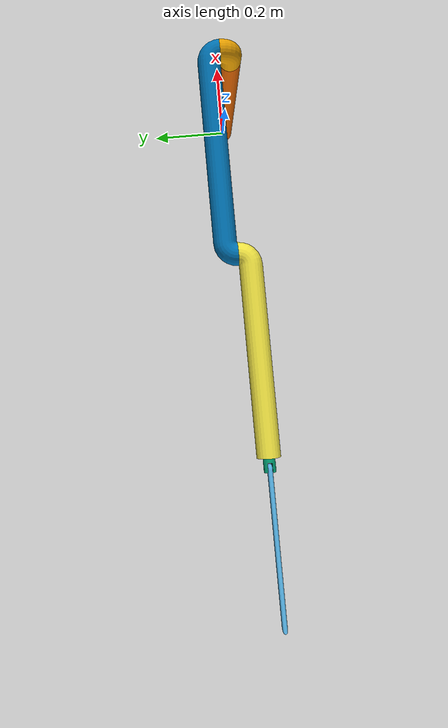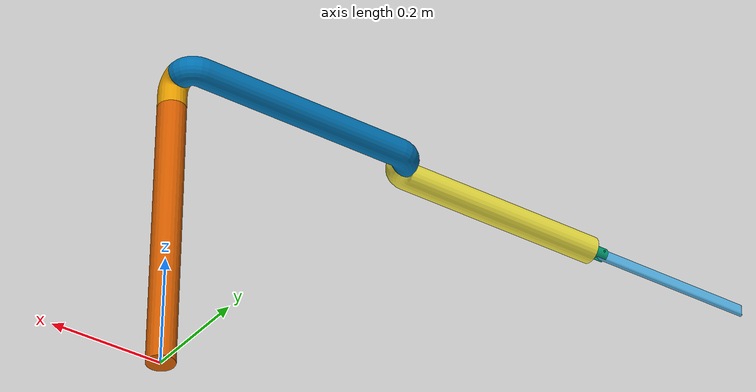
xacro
<?xml version="1.0"?>
<robot xmlns:xacro="http://www.ros.org/wiki/xacro" name="WalliArm_V2_Block_base">
    <xacro:arg name="initial_positions_file" default="initial_positions.yaml" />

    <!-- Import WalliArm_V2_Block_base urdf file -->
    <xacro:include filename="$(find urc_arm_models)/urdf/WalliArm_V2_Block_base.urdf" />

    <!-- Import control_xacro -->
    <xacro:include filename="WalliArm_V2_Block_base.ros2_control.xacro" />

    <xacro:WalliArm_V2_Block_base_ros2_control name="FakeSystem"
        initial_positions_file="$(arg initial_positions_file)" />

</robot>

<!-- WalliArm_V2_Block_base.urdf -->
<robot name="WalliArm_V2_Block_base">
  <joint name="base_yaw_joint" type="revolute">
    <origin xyz="0. 0. 0.5" rpy="0. 0. 0." />
    <parent link="World" />
    <child link="WalliArm_V2_Block_base_rotator" />
    <axis xyz="0. 0. 1." />
    <limit lower="-3.1415927" upper="3.1415927" effort="200." velocity="10." />
  </joint>
  <joint name="ee_pitch_joint" type="revolute">
    <origin xyz="0.005 0. 0.0225" rpy="-3.1415927 1.5707963 0. " />
    <parent link="WalliArm_V2_Block_ee_rotary" />
    <child link="WalliArm_V2_Block_ee_rod" />
    <axis xyz="0. 0. 1." />
    <limit lower="-1.5707963" upper="1.5707963" effort="200." velocity="30." />
  </joint>
  <joint name="ee_roll_jont" type="continuous">
    <origin xyz="-0.425 0. 0.025" rpy="-3.1415927 1.5707963 0. " />
    <parent link="WalliArm_V2_Block_fore_arm" />
    <child link="WalliArm_V2_Block_ee_rotary" />
    <axis xyz="0. 0. 1." />
    <limit effort="200." velocity="50." />
  </joint>
  <joint name="fore_arm_joint" type="revolute">
    <origin xyz="-0.45 0. 0. " rpy="3.1415927 0. 0. " />
    <parent link="WalliArm_V2_Block_upper_arm" />
    <child link="WalliArm_V2_Block_fore_arm" />
    <axis xyz="0. 0. 1." />
    <limit lower="-3.1415927" upper="3.1415927" effort="200." velocity="20." />
  </joint>
  <joint name="upper_arm_joint" type="revolute">
    <origin xyz="0. 0.025 0.055" rpy="-1.5707964 0. 0. " />
    <parent link="WalliArm_V2_Block_base_rotator" />
    <child link="WalliArm_V2_Block_upper_arm" />
    <axis xyz="0. 0. 1." />
    <limit lower="-1.225" upper="3.830" effort="200." velocity="20." />
  </joint>
  <link name="WalliArm_V2_Block_base_rotator">
    <visual>
      <origin xyz="0. 0. -0.5" rpy="0. 0. 0." />
      <geometry>
        <mesh
          filename="package://urc_arm_models/urdf/meshes/WalliArm_V2_Block_base_rotator_base_rotator.obj"
          scale="1. 1. 1." />
      </geometry>
    </visual>
    <collision>
      <geometry>
        <mesh
          filename="package://urc_arm_models/urdf/meshes/WalliArm_V2_Block_base_rotator_base_rotator.obj"
          scale="1. 1. 1." />
      </geometry>
    </collision>
  </link>
  <link name="WalliArm_V2_Block_ee_rod">
    <visual>
      <origin xyz="0.8975 -0.555 0.005 " rpy="-1.5707964 0. 0. " />
      <geometry>
        <mesh filename="package://urc_arm_models/urdf/meshes/WalliArm_V2_Block_ee_rod_ee_rod.obj"
          scale="1. 1. 1." />
      </geometry>
    </visual>
    <collision>
      <geometry>
        <mesh filename="package://urc_arm_models/urdf/meshes/WalliArm_V2_Block_ee_rod_ee_rod.obj"
          scale="1. 1. 1." />
      </geometry>
    </collision>
  </link>
  <link name="WalliArm_V2_Block_ee_rotary">
    <visual>
      <origin xyz="0. 0.555 -0.875" rpy="1.5707964 1.5707964 0. " />
      <geometry>
        <mesh
          filename="package://urc_arm_models/urdf/meshes/WalliArm_V2_Block_ee_rotary_ee_rotary.obj"
          scale="1. 1. 1." />
      </geometry>
    </visual>
    <collision>
      <geometry>
        <mesh
          filename="package://urc_arm_models/urdf/meshes/WalliArm_V2_Block_ee_rotary_ee_rotary.obj"
          scale="1. 1. 1." />
      </geometry>
    </collision>
  </link>
  <link name="WalliArm_V2_Block_fore_arm">
    <visual>
      <origin xyz="0.45 -0.555 0.025" rpy="-1.5707964 0. 0. " />
      <geometry>
        <mesh
          filename="package://urc_arm_models/urdf/meshes/WalliArm_V2_Block_fore_arm_fore_arm.obj"
          scale="1. 1. 1." />
      </geometry>
    </visual>
    <collision>
      <geometry>
        <mesh
          filename="package://urc_arm_models/urdf/meshes/WalliArm_V2_Block_fore_arm_fore_arm.obj"
          scale="1. 1. 1." />
      </geometry>
    </collision>
  </link>
  <link name="WalliArm_V2_Block_upper_arm">
    <visual>
      <origin xyz="0. 0.555 -0.025" rpy="1.5707964 0. 0. " />
      <geometry>
        <mesh
          filename="package://urc_arm_models/urdf/meshes/WalliArm_V2_Block_upper_arm_upper_arm.obj"
          scale="1. 1. 1." />
      </geometry>
    </visual>
    <collision>
      <geometry>
        <mesh
          filename="package://urc_arm_models/urdf/meshes/WalliArm_V2_Block_upper_arm_upper_arm.obj"
          scale="1. 1. 1." />
      </geometry>
    </collision>
  </link>
  <link name="World">
    <visual>
      <origin xyz="0. 0. 0." rpy="0. 0. 0." />
      <geometry>
        <mesh filename="package://urc_arm_models/urdf/meshes/WalliArm_V2_Block_spine_spine.obj"
          scale="1. 1. 1." />
      </geometry>
    </visual>
    <collision>
      <geometry>
        <mesh filename="package://urc_arm_models/urdf/meshes/WalliArm_V2_Block_spine_spine.obj"
          scale="1. 1. 1." />
      </geometry>
    </collision>
  </link>
</robot>
